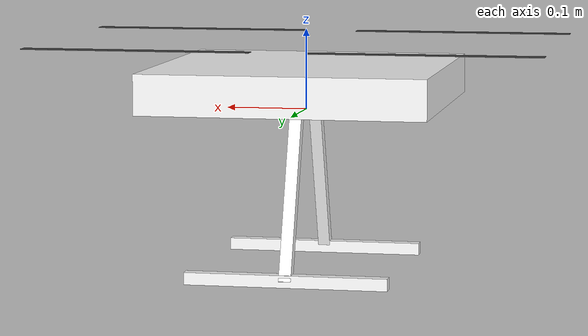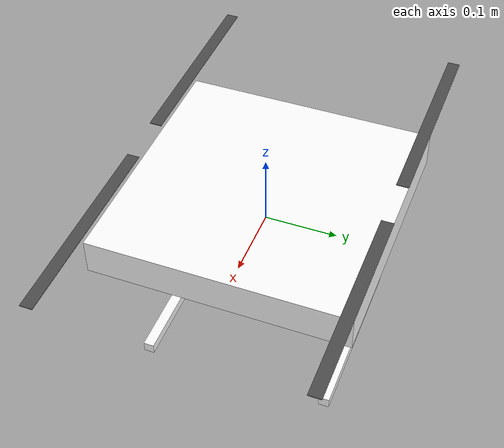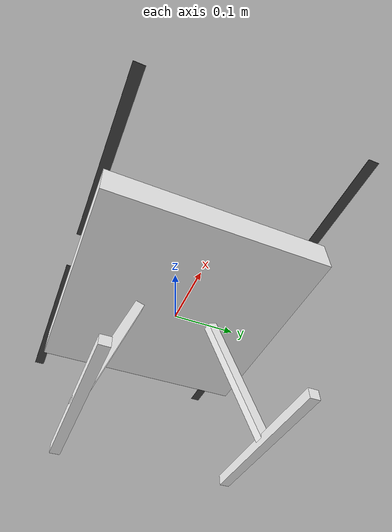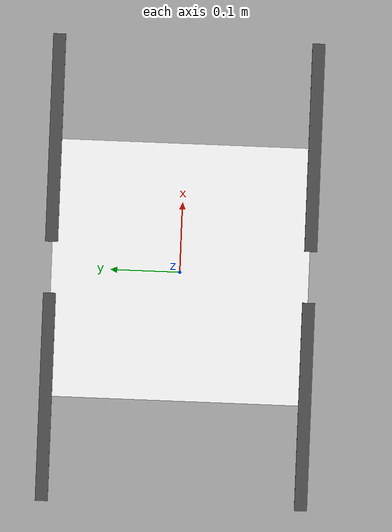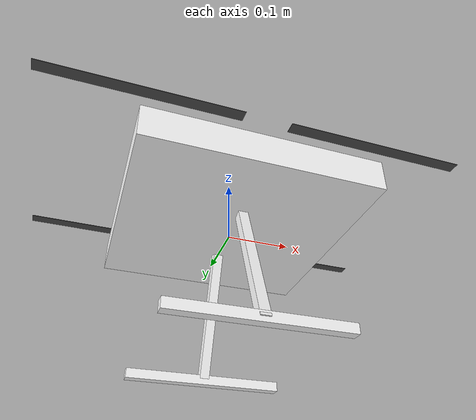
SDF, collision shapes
<?xml version='1.0'?>
<sdf version="1.9">
  <model name="x500_with_ardupilot">
    <include merge="true">
      <uri>model://x500_base</uri>
      <name>x500</name>
    </include>

    <!-- plugins -->
    <plugin filename="gz-sim-joint-state-publisher-system"
      name="gz::sim::systems::JointStatePublisher">
    </plugin>

    <plugin
      filename="gz-sim-odometry-publisher-system"
      name="gz::sim::systems::OdometryPublisher">
      <odom_frame>odom</odom_frame>
      <robot_base_frame>base_link</robot_base_frame>
      <dimensions>3</dimensions>
    </plugin>

    <!-- rotor_0 CCW: blade1 cp=+x, forward=+y; blade2 cp=-x, forward=-y -->
    <plugin filename="gz-sim-lift-drag-system"
        name="gz::sim::systems::LiftDrag">
      <a0>0.3</a0>
      <alpha_stall>1.4</alpha_stall>
      <cla>4.2500</cla>
      <cda>0.10</cda>
      <cma>0.0</cma>
      <cla_stall>-0.025</cla_stall>
      <cda_stall>0.0</cda_stall>
      <cma_stall>0.0</cma_stall>
      <area>0.002</area>
      <air_density>1.2041</air_density>
      <cp>0.1 0 0</cp>
      <forward>0 1 0</forward>
      <upward>0 0 1</upward>
      <link_name>rotor_0</link_name>
    </plugin>
    <plugin filename="gz-sim-lift-drag-system"
        name="gz::sim::systems::LiftDrag">
      <a0>0.3</a0>
      <alpha_stall>1.4</alpha_stall>
      <cla>4.2500</cla>
      <cda>0.10</cda>
      <cma>0.0</cma>
      <cla_stall>-0.025</cla_stall>
      <cda_stall>0.0</cda_stall>
      <cma_stall>0.0</cma_stall>
      <area>0.002</area>
      <air_density>1.2041</air_density>
      <cp>-0.1 0 0</cp>
      <forward>0 -1 0</forward>
      <upward>0 0 1</upward>
      <link_name>rotor_0</link_name>
    </plugin>

    <!-- rotor_1 CCW -->
    <plugin filename="gz-sim-lift-drag-system"
        name="gz::sim::systems::LiftDrag">
      <a0>0.3</a0>
      <alpha_stall>1.4</alpha_stall>
      <cla>4.2500</cla>
      <cda>0.10</cda>
      <cma>0.0</cma>
      <cla_stall>-0.025</cla_stall>
      <cda_stall>0.0</cda_stall>
      <cma_stall>0.0</cma_stall>
      <area>0.002</area>
      <air_density>1.2041</air_density>
      <cp>0.1 0 0</cp>
      <forward>0 1 0</forward>
      <upward>0 0 1</upward>
      <link_name>rotor_1</link_name>
    </plugin>
    <plugin filename="gz-sim-lift-drag-system"
        name="gz::sim::systems::LiftDrag">
      <a0>0.3</a0>
      <alpha_stall>1.4</alpha_stall>
      <cla>4.2500</cla>
      <cda>0.10</cda>
      <cma>0.0</cma>
      <cla_stall>-0.025</cla_stall>
      <cda_stall>0.0</cda_stall>
      <cma_stall>0.0</cma_stall>
      <area>0.002</area>
      <air_density>1.2041</air_density>
      <cp>-0.1 0 0</cp>
      <forward>0 -1 0</forward>
      <upward>0 0 1</upward>
      <link_name>rotor_1</link_name>
    </plugin>

    <!-- rotor_2 CW: blade1 cp=+x, forward=-y; blade2 cp=-x, forward=+y -->
    <plugin filename="gz-sim-lift-drag-system"
        name="gz::sim::systems::LiftDrag">
      <a0>0.3</a0>
      <alpha_stall>1.4</alpha_stall>
      <cla>4.2500</cla>
      <cda>0.10</cda>
      <cma>0.0</cma>
      <cla_stall>-0.025</cla_stall>
      <cda_stall>0.0</cda_stall>
      <cma_stall>0.0</cma_stall>
      <area>0.002</area>
      <air_density>1.2041</air_density>
      <cp>0.1 0 0</cp>
      <forward>0 -1 0</forward>
      <upward>0 0 1</upward>
      <link_name>rotor_2</link_name>
    </plugin>
    <plugin filename="gz-sim-lift-drag-system"
        name="gz::sim::systems::LiftDrag">
      <a0>0.3</a0>
      <alpha_stall>1.4</alpha_stall>
      <cla>4.2500</cla>
      <cda>0.10</cda>
      <cma>0.0</cma>
      <cla_stall>-0.025</cla_stall>
      <cda_stall>0.0</cda_stall>
      <cma_stall>0.0</cma_stall>
      <area>0.002</area>
      <air_density>1.2041</air_density>
      <cp>-0.1 0 0</cp>
      <forward>0 1 0</forward>
      <upward>0 0 1</upward>
      <link_name>rotor_2</link_name>
    </plugin>

    <!-- rotor_3 CW -->
    <plugin filename="gz-sim-lift-drag-system"
        name="gz::sim::systems::LiftDrag">
      <a0>0.3</a0>
      <alpha_stall>1.4</alpha_stall>
      <cla>4.2500</cla>
      <cda>0.10</cda>
      <cma>0.0</cma>
      <cla_stall>-0.025</cla_stall>
      <cda_stall>0.0</cda_stall>
      <cma_stall>0.0</cma_stall>
      <area>0.002</area>
      <air_density>1.2041</air_density>
      <cp>0.1 0 0</cp>
      <forward>0 -1 0</forward>
      <upward>0 0 1</upward>
      <link_name>rotor_3</link_name>
    </plugin>
    <plugin filename="gz-sim-lift-drag-system"
        name="gz::sim::systems::LiftDrag">
      <a0>0.3</a0>
      <alpha_stall>1.4</alpha_stall>
      <cla>4.2500</cla>
      <cda>0.10</cda>
      <cma>0.0</cma>
      <cla_stall>-0.025</cla_stall>
      <cda_stall>0.0</cda_stall>
      <cma_stall>0.0</cma_stall>
      <area>0.002</area>
      <air_density>1.2041</air_density>
      <cp>-0.1 0 0</cp>
      <forward>0 1 0</forward>
      <upward>0 0 1</upward>
      <link_name>rotor_3</link_name>
    </plugin>

    <plugin name="ArduPilotPlugin"
      filename="ArduPilotPlugin">
      <!-- Port settings -->
      <fdm_addr>127.0.0.1</fdm_addr>
      <fdm_port_in>9002</fdm_port_in>
      <connectionTimeoutMaxCount>5</connectionTimeoutMaxCount>
      <lock_step>1</lock_step>
      <no_time_sync>1</no_time_sync>
      <have_32_channels>0</have_32_channels>

      <!-- Frame conventions: XYZ -> XY-Z (ArduPilot convention) -->
      <modelXYZToAirplaneXForwardZDown degrees="true">0 0 0 180 0 0</modelXYZToAirplaneXForwardZDown>
      <gazeboXYZToNED degrees="true">0 0 0 180 0 90</gazeboXYZToNED>

      <!-- IMU sensor (merged from x500_base) -->
      <imuName>base_link::imu_sensor</imuName>

      <!-- Motor channel 0: rotor_0 (CCW, front-right) -->
      <control channel="0">
        <jointName>rotor_0_joint</jointName>
        <useForce>1</useForce>
        <multiplier>838</multiplier>
        <offset>0</offset>
        <servo_min>1100</servo_min>
        <servo_max>1900</servo_max>
        <type>VELOCITY</type>
        <p_gain>0.0088</p_gain>
        <i_gain>0</i_gain>
        <d_gain>0</d_gain>
        <i_max>0</i_max>
        <i_min>0</i_min>
        <cmd_max>2.5</cmd_max>
        <cmd_min>-2.5</cmd_min>
        <controlVelocitySlowdownSim>1</controlVelocitySlowdownSim>
      </control>

      <!-- Motor channel 1: rotor_1 (CCW, back-left) -->
      <control channel="1">
        <jointName>rotor_1_joint</jointName>
        <useForce>1</useForce>
        <multiplier>838</multiplier>
        <offset>0</offset>
        <servo_min>1100</servo_min>
        <servo_max>1900</servo_max>
        <type>VELOCITY</type>
        <p_gain>0.0088</p_gain>
        <i_gain>0</i_gain>
        <d_gain>0</d_gain>
        <i_max>0</i_max>
        <i_min>0</i_min>
        <cmd_max>2.5</cmd_max>
        <cmd_min>-2.5</cmd_min>
        <controlVelocitySlowdownSim>1</controlVelocitySlowdownSim>
      </control>

      <!-- Motor channel 2: rotor_2 (CW, front-left) -->
      <control channel="2">
        <jointName>rotor_2_joint</jointName>
        <useForce>1</useForce>
        <multiplier>-838</multiplier>
        <offset>0</offset>
        <servo_min>1100</servo_min>
        <servo_max>1900</servo_max>
        <type>VELOCITY</type>
        <p_gain>0.0088</p_gain>
        <i_gain>0</i_gain>
        <d_gain>0</d_gain>
        <i_max>0</i_max>
        <i_min>0</i_min>
        <cmd_max>2.5</cmd_max>
        <cmd_min>-2.5</cmd_min>
        <controlVelocitySlowdownSim>1</controlVelocitySlowdownSim>
      </control>

      <!-- Motor channel 3: rotor_3 (CW, back-right) -->
      <control channel="3">
        <jointName>rotor_3_joint</jointName>
        <useForce>1</useForce>
        <multiplier>-838</multiplier>
        <offset>0</offset>
        <servo_min>1100</servo_min>
        <servo_max>1900</servo_max>
        <type>VELOCITY</type>
        <p_gain>0.0088</p_gain>
        <i_gain>0</i_gain>
        <d_gain>0</d_gain>
        <i_max>0</i_max>
        <i_min>0</i_min>
        <cmd_max>2.5</cmd_max>
        <cmd_min>-2.5</cmd_min>
        <controlVelocitySlowdownSim>1</controlVelocitySlowdownSim>
      </control>
    </plugin>

  </model>
</sdf>

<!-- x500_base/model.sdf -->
<sdf version='1.9'>
  <model name='x500_base'>
    <pose>0 0 .025 0 0 0</pose>
    <self_collide>false</self_collide>
    <static>false</static>
    <link name="base_link">
      <inertial>
        <mass>2.0</mass>
        <inertia>
          <ixx>0.02166666666666667</ixx>
          <ixy>0</ixy>
          <ixz>0</ixz>
          <iyy>0.02166666666666667</iyy>
          <iyz>0</iyz>
          <izz>0.04000000000000001</izz>
        </inertia>
      </inertial>
      <gravity>true</gravity>
      <velocity_decay />
      <visual name="base_link_visual">
        <pose>0 0 .025 0 0 3.141592654</pose>
        <geometry>
          <mesh>
            <scale>1 1 1</scale>
            <uri>package://ardupilot_gazebo/models/x500_base/meshes/NXP-HGD-CF.dae</uri>
          </mesh>
        </geometry>
      </visual>
      <visual name="5010_motor_base_0">
        <pose>0.174 0.174 .032 0 0 -.45</pose>
        <geometry>
          <mesh>
            <scale>1 1 1</scale>
            <uri>package://ardupilot_gazebo/models/x500_base/meshes/5010Base.dae</uri>
          </mesh>
        </geometry>
      </visual>
      <visual name="5010_motor_base_1">
        <pose>-0.174 0.174 .032 0 0 -.45</pose>
        <geometry>
          <mesh>
            <scale>1 1 1</scale>
            <uri>package://ardupilot_gazebo/models/x500_base/meshes/5010Base.dae</uri>
          </mesh>
        </geometry>
      </visual>
      <visual name="5010_motor_base_2">
        <pose>0.174 -0.174 .032 0 0 -.45</pose>
        <geometry>
          <mesh>
            <scale>1 1 1</scale>
            <uri>package://ardupilot_gazebo/models/x500_base/meshes/5010Base.dae</uri>
          </mesh>
        </geometry>
      </visual>
      <visual name="5010_motor_base_3">
        <pose>-0.174 -0.174 .032 0 0 -.45</pose>
        <geometry>
          <mesh>
            <scale>1 1 1</scale>
            <uri>package://ardupilot_gazebo/models/x500_base/meshes/5010Base.dae</uri>
          </mesh>
        </geometry>
      </visual>
      <visual name="NXP_FMUK66_FRONT">
        <pose>0.047 .001 .043 1 0 1.57</pose>
        <cast_shadows>false</cast_shadows>
        <geometry>
          <box>
            <size>.013 .007 .001</size>
          </box>
        </geometry>
        <material>
          <diffuse>1.0 1.0 1.0</diffuse>
          <specular>1.0 1.0 1.0</specular>
          <pbr>
            <metal>
              <albedo_map>package://ardupilot_gazebo/models/x500_base/materials/textures/nxp.png</albedo_map>
            </metal>
          </pbr>
        </material>
      </visual>
      <visual name="NXP_FMUK66_TOP">
        <pose>-0.023 0 .0515 0 0 -1.57</pose>
        <cast_shadows>false</cast_shadows>
        <geometry>
          <box>
            <size>.013 .007 .001</size>
          </box>
        </geometry>
        <material>
          <diffuse>1.0 1.0 1.0</diffuse>
          <specular>1.0 1.0 1.0</specular>
          <pbr>
            <metal>
              <albedo_map>package://ardupilot_gazebo/models/x500_base/materials/textures/nxp.png</albedo_map>
            </metal>
          </pbr>
        </material>
      </visual>
      <visual name="RDDRONE_FMUK66_TOP">
        <pose>-.03 0 .0515 0 0 -1.57</pose>
        <cast_shadows>false</cast_shadows>
        <geometry>
          <box>
            <size>.032 .0034 .001</size>
          </box>
        </geometry>
        <material>
          <diffuse>1.0 1.0 1.0</diffuse>
          <specular>1.0 1.0 1.0</specular>
          <pbr>
            <metal>
              <albedo_map>package://ardupilot_gazebo/models/x500_base/materials/textures/rd.png</albedo_map>
            </metal>
          </pbr>
        </material>
      </visual>
      <collision name="base_link_collision_0">
        <pose>0 0 .007 0 0 0</pose>
        <geometry>
          <box>
            <size>0.35355339059327373 0.35355339059327373 0.05</size>
          </box>
        </geometry>
        <surface>
          <contact>
            <ode>
              <min_depth>0.001</min_depth>
              <max_vel>0</max_vel>
            </ode>
          </contact>
          <friction>
            <ode />
          </friction>
        </surface>
      </collision>
      <collision name="base_link_collision_1">
        <pose>0 -0.098 -.123 -0.35 0 0</pose>
        <geometry>
          <box>
            <size>0.015 0.015 0.21</size>
          </box>
        </geometry>
        <surface>
          <contact>
            <ode>
              <min_depth>0.001</min_depth>
              <max_vel>0</max_vel>
            </ode>
          </contact>
          <friction>
            <ode />
          </friction>
        </surface>
      </collision>
      <collision name="base_link_collision_2">
        <pose>0 0.098 -.123 0.35 0 0</pose>
        <geometry>
          <box>
            <size>0.015 0.015 0.21</size>
          </box>
        </geometry>
        <surface>
          <contact>
            <ode>
              <min_depth>0.001</min_depth>
              <max_vel>0</max_vel>
            </ode>
          </contact>
          <friction>
            <ode />
          </friction>
        </surface>
      </collision>
      <collision name="base_link_collision_3">
        <pose>0 -0.132 -.2195 0 0 0</pose>
        <geometry>
          <box>
            <size>0.25 0.015 0.015</size>
          </box>
        </geometry>
        <surface>
          <contact>
            <ode>
              <min_depth>0.001</min_depth>
              <max_vel>0</max_vel>
            </ode>
          </contact>
          <friction>
            <ode />
          </friction>
        </surface>
      </collision>
      <collision name="base_link_collision_4">
        <pose>0 0.132 -.2195 0 0 0</pose>
        <geometry>
          <box>
            <size>0.25 0.015 0.015</size>
          </box>
        </geometry>
        <surface>
          <contact>
            <ode>
              <min_depth>0.001</min_depth>
              <max_vel>0</max_vel>
            </ode>
          </contact>
          <friction>
            <ode />
          </friction>
        </surface>
      </collision>
      <sensor name="air_pressure_sensor" type="air_pressure">
        <gz_frame_id>base_link</gz_frame_id>
        <always_on>1</always_on>
        <update_rate>50</update_rate>
        <air_pressure>
          <!-- Noise modeled after BMP390 -->
          <pressure>
            <noise type="gaussian">
              <mean>0</mean>
              <stddev>3</stddev>
            </noise>
          </pressure>
        </air_pressure>
      </sensor>
      <sensor name="magnetometer_sensor" type="magnetometer">
        <gz_frame_id>base_link</gz_frame_id>
        <always_on>1</always_on>
        <update_rate>100</update_rate>
        <magnetometer>
          <!-- TODO: update to fix units and coordinate system when we move past Harmonic -->
          <!-- See https://github.com/gazebosim/gz-sim/pull/2460 -->
          <!-- 3mgauss RMS: NOTE: noise is in tesla but sensor reports data in gauss -->
          <!-- Noise modeled after IIS2MDC -->
          <x>
            <noise type="gaussian">
              <stddev>0.0001</stddev>
            </noise>
          </x>
          <y>
            <noise type="gaussian">
              <stddev>0.0001</stddev>
            </noise>
          </y>
          <z>
            <noise type="gaussian">
              <stddev>0.0001</stddev>
            </noise>
          </z>
        </magnetometer>
      </sensor>
      <sensor name="imu_sensor" type="imu">
        <gz_frame_id>base_link</gz_frame_id>
        <pose degrees="true">0 0 0 180 0 0</pose>
        <always_on>1</always_on>
        <update_rate>250</update_rate>
        <imu>
          <angular_velocity>
            <!-- Noise modeled after IIM42653 -->
            <!-- 0.05 deg/s converted to rad/s -->
            <x>
              <noise type="gaussian">
                <mean>0.0</mean>
                <stddev>0.0008726646</stddev>
              </noise>
            </x>
            <y>
              <noise type="gaussian">
                <mean>0.0</mean>
                <stddev>0.0008726646</stddev>
              </noise>
            </y>
            <z>
              <noise type="gaussian">
                <mean>0.0</mean>
                <stddev>0.0008726646</stddev>
              </noise>
            </z>
          </angular_velocity>
          <linear_acceleration>
            <!-- Noise modeled after IIM42653 -->
            <!-- X & Y axis: 0.65 mg-rms converted to m/ss -->
            <x>
              <noise type="gaussian">
                <mean>0.0</mean>
                <stddev>0.00637</stddev>
              </noise>
            </x>
            <y>
              <noise type="gaussian">
                <mean>0.0</mean>
                <stddev>0.00637</stddev>
              </noise>
            </y>
            <!-- Z axis: 0.70 mg-rms converted to m/ss-->
            <z>
              <noise type="gaussian">
                <mean>0.0</mean>
                <stddev>0.00686</stddev>
              </noise>
            </z>
          </linear_acceleration>
        </imu>
      </sensor>
      <sensor name="navsat_sensor" type="navsat">
        <gz_frame_id>base_link</gz_frame_id>
        <always_on>1</always_on>
        <update_rate>30</update_rate>
      </sensor>
    </link>
    <link name="rotor_0">
      <gravity>true</gravity>
      <self_collide>false</self_collide>
      <velocity_decay />
      <pose>0.174 -0.174 0.06 0 0 0</pose>
      <inertial>
        <mass>0.016076923076923075</mass>
        <inertia>
          <ixx>3.8464910483993325e-07</ixx>
          <iyy>2.6115851691700804e-05</iyy>
          <izz>2.649858234714004e-05</izz>
        </inertia>
      </inertial>
      <visual name="rotor_0_visual">
        <pose>-0.022 -0.14638461538461536 -0.016 0 0 0</pose>
        <geometry>
          <mesh>
            <scale>0.8461538461538461 0.8461538461538461 0.8461538461538461</scale>
            <uri>package://ardupilot_gazebo/models/x500_base/meshes/1345_prop_ccw.stl</uri>
          </mesh>
        </geometry>
        <material>
          <script>
            <name>Gazebo/DarkGrey</name>
            <uri>file://media/materials/scripts/gazebo.material</uri>
          </script>
        </material>
      </visual>
      <visual name="rotor_0_visual_motor_bell">
        <pose>0 0 -.032 0 0 0</pose>
        <geometry>
          <mesh>
            <scale>1 1 1</scale>
            <uri>package://ardupilot_gazebo/models/x500_base/meshes/5010Bell.dae</uri>
          </mesh>
        </geometry>
      </visual>
      <collision name="rotor_0_collision">
        <pose>0 0 0 0 0 0 </pose>
        <geometry>
          <box>
            <size>0.2792307692307692 0.016923076923076923 0.0008461538461538462</size>
          </box>
        </geometry>
        <surface>
          <contact>
            <ode>
              <min_depth>0.001</min_depth>
              <max_vel>0</max_vel>
            </ode>
          </contact>
          <friction>
            <ode />
          </friction>
        </surface>
      </collision>
    </link>
    <joint name="rotor_0_joint" type="revolute">
      <parent>base_link</parent>
      <child>rotor_0</child>
      <axis>
        <xyz>0 0 1</xyz>
        <limit>
          <lower>-1e+16</lower>
          <upper>1e+16</upper>
        </limit>
        <dynamics>
          <spring_reference>0</spring_reference>
          <spring_stiffness>0</spring_stiffness>
          <damping>0.0001</damping>
        </dynamics>
      </axis>
    </joint>
    <link name="rotor_1">
      <gravity>true</gravity>
      <self_collide>false</self_collide>
      <velocity_decay />
      <pose>-0.174 0.174 0.06 0 0 0</pose>
      <inertial>
        <mass>0.016076923076923075</mass>
        <inertia>
          <ixx>3.8464910483993325e-07</ixx>
          <iyy>2.6115851691700804e-05</iyy>
          <izz>2.649858234714004e-05</izz>
        </inertia>
      </inertial>
      <visual name="rotor_1_visual">
        <pose>-0.022 -0.14638461538461536 -0.016 0 0 0</pose>
        <geometry>
          <mesh>
            <scale>0.8461538461538461 0.8461538461538461 0.8461538461538461</scale>
            <uri>package://ardupilot_gazebo/models/x500_base/meshes/1345_prop_ccw.stl</uri>
          </mesh>
        </geometry>
        <material>
          <script>
            <name>Gazebo/DarkGrey</name>
            <uri>file://media/materials/scripts/gazebo.material</uri>
          </script>
        </material>
      </visual>
      <visual name="rotor_1_visual_motor_top">
        <pose>0 0 -.032 0 0 0</pose>
        <geometry>
          <mesh>
            <scale>1 1 1</scale>
            <uri>package://ardupilot_gazebo/models/x500_base/meshes/5010Bell.dae</uri>
          </mesh>
        </geometry>
      </visual>
      <collision name="rotor_1_collision">
        <pose>0 0 0 0 0 0 </pose>
        <geometry>
          <box>
            <size>0.2792307692307692 0.016923076923076923 0.0008461538461538462</size>
          </box>
        </geometry>
        <surface>
          <contact>
            <ode>
              <min_depth>0.001</min_depth>
              <max_vel>0</max_vel>
            </ode>
          </contact>
          <friction>
            <ode />
          </friction>
        </surface>
      </collision>
    </link>
    <joint name="rotor_1_joint" type="revolute">
      <parent>base_link</parent>
      <child>rotor_1</child>
      <axis>
        <xyz>0 0 1</xyz>
        <limit>
          <lower>-1e+16</lower>
          <upper>1e+16</upper>
        </limit>
        <dynamics>
          <spring_reference>0</spring_reference>
          <spring_stiffness>0</spring_stiffness>
          <damping>0.0001</damping>
        </dynamics>
      </axis>
    </joint>
    <link name="rotor_2">
      <gravity>true</gravity>
      <self_collide>false</self_collide>
      <velocity_decay />
      <pose>0.174 0.174 0.06 0 0 0</pose>
      <inertial>
        <mass>0.016076923076923075</mass>
        <inertia>
          <ixx>3.8464910483993325e-07</ixx>
          <iyy>2.6115851691700804e-05</iyy>
          <izz>2.649858234714004e-05</izz>
        </inertia>
      </inertial>
      <visual name="rotor_2_visual">
        <pose>-0.022 -0.14638461538461536 -0.016 0 0 0</pose>
        <geometry>
          <mesh>
            <scale>0.8461538461538461 0.8461538461538461 0.8461538461538461</scale>
            <uri>package://ardupilot_gazebo/models/x500_base/meshes/1345_prop_cw.stl</uri>
          </mesh>
        </geometry>
        <material>
          <script>
            <name>Gazebo/DarkGrey</name>
            <uri>file://media/materials/scripts/gazebo.material</uri>
          </script>
        </material>
      </visual>
      <visual name="rotor_2_visual_motor_top">
        <pose>0 0 -.032 0 0 0</pose>
        <geometry>
          <mesh>
            <scale>1 1 1</scale>
            <uri>package://ardupilot_gazebo/models/x500_base/meshes/5010Bell.dae</uri>
          </mesh>
        </geometry>
      </visual>
      <collision name="rotor_2_collision">
        <pose>0 0 0 0 0 0 </pose>
        <geometry>
          <box>
            <size>0.2792307692307692 0.016923076923076923 0.0008461538461538462</size>
          </box>
        </geometry>
        <surface>
          <contact>
            <ode>
              <min_depth>0.001</min_depth>
              <max_vel>0</max_vel>
            </ode>
          </contact>
          <friction>
            <ode />
          </friction>
        </surface>
      </collision>
    </link>
    <joint name="rotor_2_joint" type="revolute">
      <parent>base_link</parent>
      <child>rotor_2</child>
      <axis>
        <xyz>0 0 1</xyz>
        <limit>
          <lower>-1e+16</lower>
          <upper>1e+16</upper>
        </limit>
        <dynamics>
          <spring_reference>0</spring_reference>
          <spring_stiffness>0</spring_stiffness>
          <damping>0.0001</damping>
        </dynamics>
      </axis>
    </joint>
    <link name="rotor_3">
      <gravity>true</gravity>
      <self_collide>false</self_collide>
      <velocity_decay />
      <pose>-0.174 -0.174 0.06 0 0 0</pose>
      <inertial>
        <mass>0.016076923076923075</mass>
        <inertia>
          <ixx>3.8464910483993325e-07</ixx>
          <iyy>2.6115851691700804e-05</iyy>
          <izz>2.649858234714004e-05</izz>
        </inertia>
      </inertial>
      <visual name="rotor_3_visual">
        <pose>-0.022 -0.14638461538461536 -0.016 0 0 0</pose>
        <geometry>
          <mesh>
            <scale>0.8461538461538461 0.8461538461538461 0.8461538461538461</scale>
            <uri>package://ardupilot_gazebo/models/x500_base/meshes/1345_prop_cw.stl</uri>
          </mesh>
        </geometry>
        <material>
          <script>
            <name>Gazebo/DarkGrey</name>
            <uri>file://media/materials/scripts/gazebo.material</uri>
          </script>
        </material>
      </visual>
      <visual name="rotor_3_visual_motor_top">
        <pose>0 0 -.032 0 0 0</pose>
        <geometry>
          <mesh>
            <scale>1 1 1</scale>
            <uri>package://ardupilot_gazebo/models/x500_base/meshes/5010Bell.dae</uri>
          </mesh>
        </geometry>
      </visual>
      <collision name="rotor_3_collision">
        <pose>0 0 0 0 0 0 </pose>
        <geometry>
          <box>
            <size>0.2792307692307692 0.016923076923076923 0.0008461538461538462</size>
          </box>
        </geometry>
        <surface>
          <contact>
            <ode>
              <min_depth>0.001</min_depth>
              <max_vel>0</max_vel>
            </ode>
          </contact>
          <friction>
            <ode />
          </friction>
        </surface>
      </collision>
    </link>
    <joint name="rotor_3_joint" type="revolute">
      <parent>base_link</parent>
      <child>rotor_3</child>
      <axis>
        <xyz>0 0 1</xyz>
        <limit>
          <lower>-1e+16</lower>
          <upper>1e+16</upper>
        </limit>
        <dynamics>
          <spring_reference>0</spring_reference>
          <spring_stiffness>0</spring_stiffness>
          <damping>0.0001</damping>
        </dynamics>
      </axis>
    </joint>
  </model>
</sdf>
